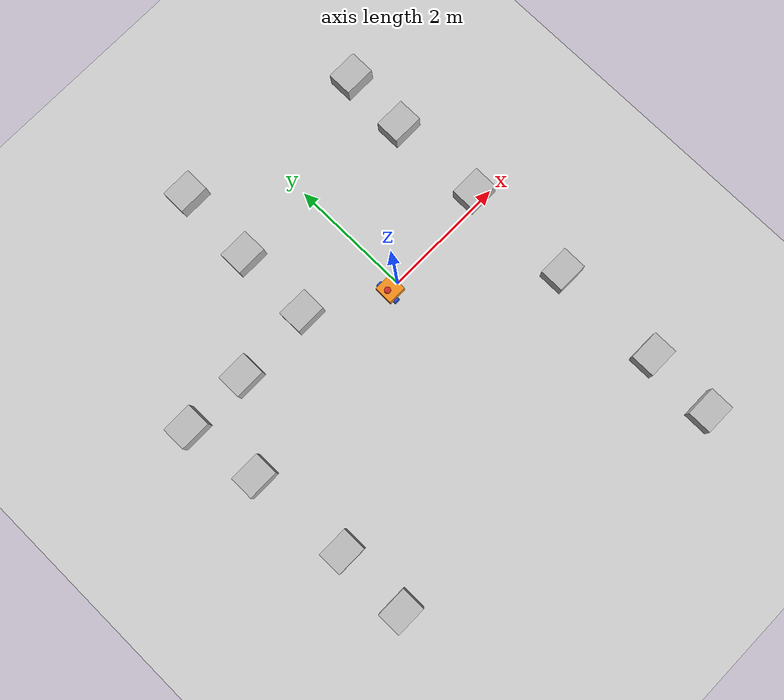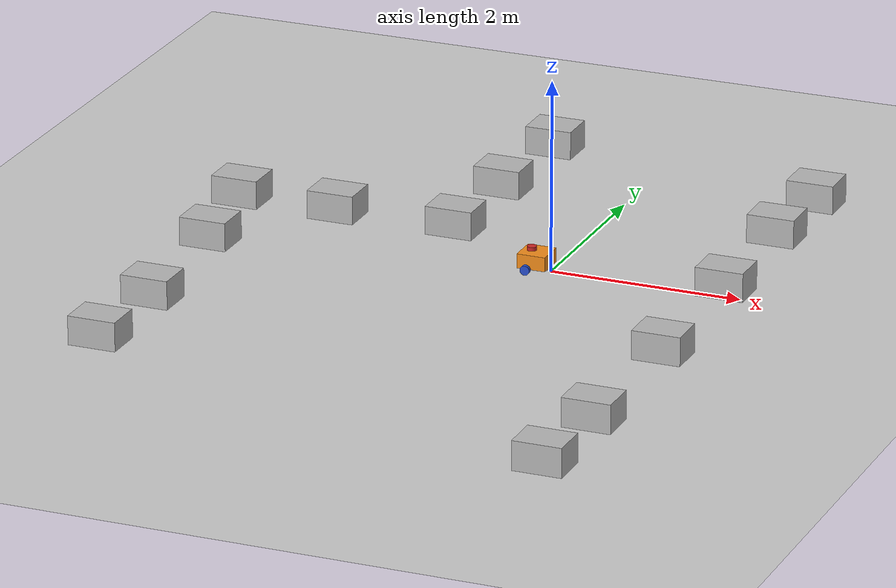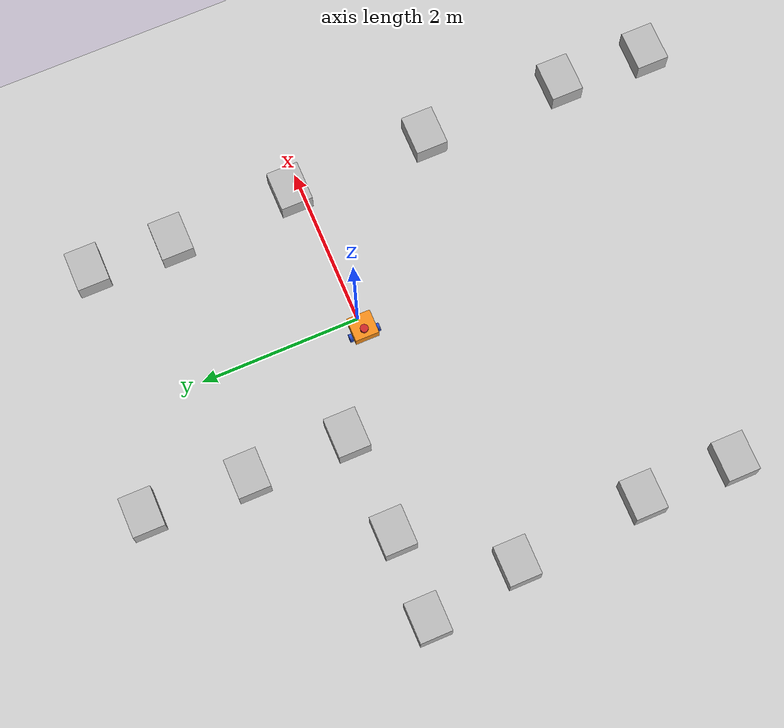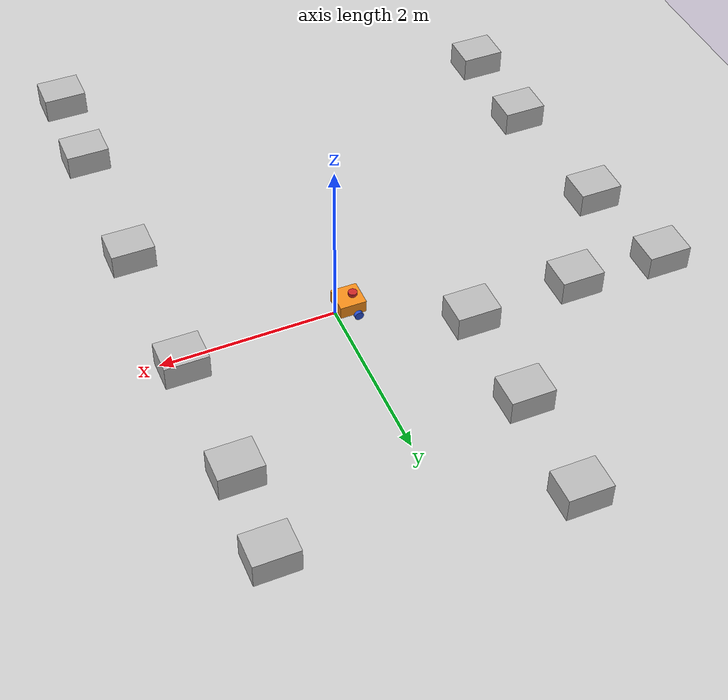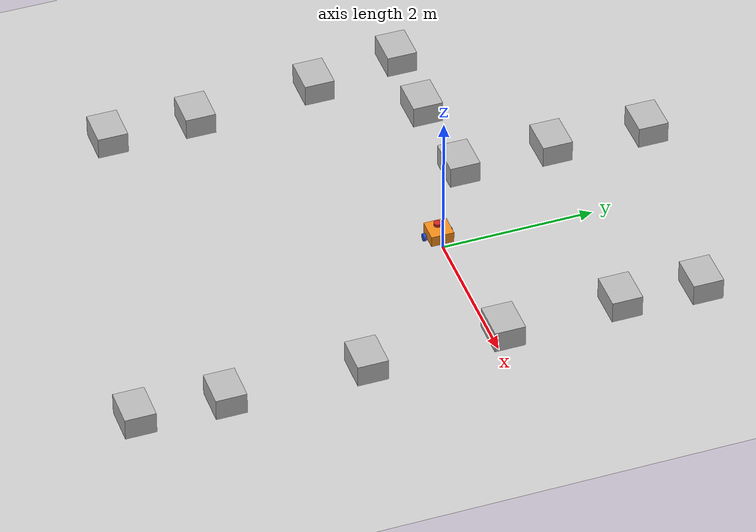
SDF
<sdf version="1.7">
 <world name="default">
  <light name="sun" type="directional">
   <pose>0 0 10 0 -0 0</pose>
   <diffuse>0.8 0.8 0.8 1</diffuse>
   <specular>0.2 0.2 0.2 1</specular>
   <attenuation>
    <range>1000</range>
    <constant>0.9</constant>
    <linear>0.01</linear>
    <quadratic>0.001</quadratic>
   </attenuation>
   <direction>-0.5 0.1 -0.9</direction>
   <spot><inner_angle>0</inner_angle><outer_angle>0</outer_angle><falloff>0</falloff></spot>
  </light>
  <model name="ground_plane">
   <static>1</static>
   <link name="link">
    <collision name="collision">
     <geometry><plane><normal>0 0 1</normal><size>100 100</size></plane></geometry>
     <surface><friction><ode><mu>100</mu><mu2>50</mu2></ode></friction></surface>
    </collision>
    <visual name="visual">
     <cast_shadows>0</cast_shadows>
     <geometry><plane><normal>0 0 1</normal><size>100 100</size></plane></geometry>
     <material>
      <script><uri>file://media/materials/scripts/gazebo.material</uri><name>Gazebo/Grey</name></script>
     </material>
    </visual>
   </link>
  </model>
  <gravity>0 0 -9.8</gravity>
  <magnetic_field>6e-06 2.3e-05 -4.2e-05</magnetic_field>
  <atmosphere type="adiabatic"/>
  <physics type="ode">
   <max_step_size>0.001</max_step_size>
   <real_time_factor>1</real_time_factor>
   <real_time_update_rate>1000</real_time_update_rate>
  </physics>
  <scene><ambient>0.4 0.4 0.4 1</ambient><background>0.7 0.7 0.7 1</background><shadows>1</shadows></scene>
  <spherical_coordinates>
   <surface_model>EARTH_WGS84</surface_model>
   <latitude_deg>0</latitude_deg>
   <longitude_deg>0</longitude_deg>
   <elevation>0</elevation>
   <heading_deg>0</heading_deg>
  </spherical_coordinates>
  <model name="my_bot">
   <link name="base_link">
    <inertial>
     <pose>0.057623 0 0.085246 0 -0 0</pose>
     <mass>0.61</mass>
     <inertia>
      <ixx>0.00480599</ixx>
      <ixy>0</ixy>
      <ixz>0.000667643</ixz>
      <iyy>0.00700467</iyy>
      <iyz>0</iyz>
      <izz>0.00817616</izz>
     </inertia>
    </inertial>
    <collision name="base_link_fixed_joint_lump__chassis_collision">
     <pose>0.05 0 0.075 0 -0 0</pose>
     <geometry><box><size>0.3 0.3 0.15</size></box></geometry>
    </collision>
    <collision name="base_link_fixed_joint_lump__caster_wheel_collision_1">
     <pose>0.14 0 0 0 -0 0</pose>
     <geometry><sphere><radius>0.05</radius></sphere></geometry>
     <surface><friction><ode><mu>0.001</mu><mu2>0.001</mu2></ode></friction></surface>
    </collision>
    <collision name="base_link_fixed_joint_lump__laser_frame_collision_2">
     <pose>0 0 0.175 0 -0 0</pose>
     <geometry><cylinder><length>0.04</length><radius>0.05</radius></cylinder></geometry>
    </collision>
    <visual name="base_link_fixed_joint_lump__chassis_visual">
     <pose>0.05 0 0.075 0 -0 0</pose>
     <geometry><box><size>0.3 0.3 0.15</size></box></geometry>
     <material>
      <script><name>Gazebo/Orange</name><uri>file://media/materials/scripts/gazebo.material</uri></script>
     </material>
    </visual>
    <visual name="base_link_fixed_joint_lump__caster_wheel_visual_1">
     <pose>0.14 0 0 0 -0 0</pose>
     <geometry><sphere><radius>0.05</radius></sphere></geometry>
     <material>
      <script><name>Gazebo/Black</name><uri>file://media/materials/scripts/gazebo.material</uri></script>
     </material>
    </visual>
    <visual name="base_link_fixed_joint_lump__laser_frame_visual_2">
     <pose>0 0 0.175 0 -0 0</pose>
     <geometry><cylinder><length>0.04</length><radius>0.05</radius></cylinder></geometry>
     <material>
      <script><name>Gazebo/Red</name><uri>file://media/materials/scripts/gazebo.material</uri></script>
     </material>
    </visual>
    <sensor name="laser" type="ray">
     <visualize>1</visualize>
     <update_rate>10</update_rate>
     <ray>
      <scan>
       <horizontal>
        <samples>360</samples>
        <min_angle>-3.14</min_angle>
        <max_angle>3.14</max_angle>
        <resolution>1</resolution>
       </horizontal>
       <vertical><samples>1</samples><min_angle>0</min_angle><max_angle>0</max_angle></vertical>
      </scan>
      <range><min>0.3</min><max>12</max></range>
     </ray>
     <plugin name="laser_controller" filename="libgazebo_ros_ray_sensor.so">
      <ros><argument>~/out:=scan</argument></ros>
      <output_type>sensor_msgs/LaserScan</output_type>
      <frame_name>laser_frame</frame_name>
     </plugin>
     <pose>0 0 0.175 0 -0 0</pose>
    </sensor>
   </link>
   <joint name="left_wheel_joint" type="revolute">
    <pose relative_to="base_link">0 0.175 0 -1.5708 0 0</pose>
    <parent>base_link</parent>
    <child>left_wheel</child>
    <axis>
     <xyz>0 0 1</xyz>
     <limit><lower>-1e+16</lower><upper>1e+16</upper></limit>
     <dynamics><spring_reference>0</spring_reference><spring_stiffness>0</spring_stiffness></dynamics>
    </axis>
   </joint>
   <link name="left_wheel">
    <pose relative_to="left_wheel_joint">0 0 0 0 -0 0</pose>
    <inertial>
     <mass>0.05</mass>
     <inertia>
      <ixx>1.64292e-05</ixx>
      <ixy>0</ixy>
      <ixz>0</ixz>
      <iyy>1.64292e-05</iyy>
      <iyz>0</iyz>
      <izz>2.7225e-05</izz>
     </inertia>
    </inertial>
    <collision name="left_wheel_collision">
     <geometry><cylinder><length>0.04</length><radius>0.05</radius></cylinder></geometry>
    </collision>
    <visual name="left_wheel_visual">
     <geometry><cylinder><length>0.04</length><radius>0.05</radius></cylinder></geometry>
     <material>
      <script><name>Gazebo/Blue</name><uri>file://media/materials/scripts/gazebo.material</uri></script>
     </material>
    </visual>
   </link>
   <joint name="right_wheel_joint" type="revolute">
    <pose relative_to="base_link">0 -0.175 0 1.5708 -0 0</pose>
    <parent>base_link</parent>
    <child>right_wheel</child>
    <axis>
     <xyz>0 0 -1</xyz>
     <limit><lower>-1e+16</lower><upper>1e+16</upper></limit>
     <dynamics><spring_reference>0</spring_reference><spring_stiffness>0</spring_stiffness></dynamics>
    </axis>
   </joint>
   <link name="right_wheel">
    <pose relative_to="right_wheel_joint">0 0 0 0 -0 0</pose>
    <inertial>
     <mass>0.05</mass>
     <inertia>
      <ixx>1.64292e-05</ixx>
      <ixy>0</ixy>
      <ixz>0</ixz>
      <iyy>1.64292e-05</iyy>
      <iyz>0</iyz>
      <izz>2.7225e-05</izz>
     </inertia>
    </inertial>
    <collision name="right_wheel_collision">
     <geometry><cylinder><length>0.04</length><radius>0.05</radius></cylinder></geometry>
    </collision>
    <visual name="right_wheel_visual">
     <geometry><cylinder><length>0.04</length><radius>0.05</radius></cylinder></geometry>
     <material>
      <script><name>Gazebo/Blue</name><uri>file://media/materials/scripts/gazebo.material</uri></script>
     </material>
    </visual>
   </link>
   <static>0</static>
   <plugin name="diff_drive" filename="libgazebo_ros_diff_drive.so">
    <left_joint>left_wheel_joint</left_joint>
    <right_joint>right_wheel_joint</right_joint>
    <wheel_separation>0.35</wheel_separation>
    <wheel_diameter>0.1</wheel_diameter>
    <max_wheel_torque>200</max_wheel_torque>
    <max_wheel_acceleration>10.0</max_wheel_acceleration>
    <odometry_frame>odom</odometry_frame>
    <robot_base_frame>base_link</robot_base_frame>
    <publish_odom>1</publish_odom>
    <publish_odom_tf>1</publish_odom_tf>
    <publish_wheel_tf>1</publish_wheel_tf>
   </plugin>
   <pose>-0.205341 -0.003187 0.050001 1e-06 1.9e-05 -0.00431</pose>
  </model>
  <model name="cardboard_box">
   <pose>1.7942 2.75603 0.149 0 -0 0</pose>
   <link name="link">
    <inertial>
     <mass>2</mass>
     <inertia>
      <ixx>0.0416667</ixx>
      <ixy>0</ixy>
      <ixz>0</ixz>
      <iyy>0.0566667</iyy>
      <iyz>0</iyz>
      <izz>0.0683333</izz>
     </inertia>
    </inertial>
    <collision name="collision">
     <geometry><box><size>0.5 0.4 0.3</size></box></geometry>
     <surface>
      <friction><ode><mu>1</mu><mu2>1</mu2></ode></friction>
      <contact><ode><kp>1e+07</kp><kd>1</kd><min_depth>0.001</min_depth><max_vel>0.1</max_vel></ode></contact>
     </surface>
    </collision>
    <visual name="visual">
     <pose>0 0 -0.15 0 -0 0</pose>
     <geometry>
      <mesh><uri>model://cardboard_box/meshes/cardboard_box.dae</uri><scale>1.25932 1.00745 0.755591</scale></mesh>
     </geometry>
    </visual>
   </link>
  </model>
  <model name="cardboard_box_clone">
   <pose>1.75652 1.69547 0.149 0 -0 0</pose>
   <link name="link">
    <inertial>
     <mass>2</mass>
     <inertia>
      <ixx>0.0416667</ixx>
      <ixy>0</ixy>
      <ixz>0</ixz>
      <iyy>0.0566667</iyy>
      <iyz>0</iyz>
      <izz>0.0683333</izz>
     </inertia>
    </inertial>
    <collision name="collision">
     <geometry><box><size>0.5 0.4 0.3</size></box></geometry>
     <surface>
      <friction><ode><mu>1</mu><mu2>1</mu2></ode></friction>
      <contact><ode><kp>1e+07</kp><kd>1</kd><min_depth>0.001</min_depth><max_vel>0.1</max_vel></ode></contact>
     </surface>
    </collision>
    <visual name="visual">
     <pose>0 0 -0.15 0 -0 0</pose>
     <geometry>
      <mesh><uri>model://cardboard_box/meshes/cardboard_box.dae</uri><scale>1.25932 1.00745 0.755591</scale></mesh>
     </geometry>
    </visual>
   </link>
  </model>
  <model name="cardboard_box_clone_0">
   <pose>1.7902 0.140883 0.149 0 -0 0</pose>
   <link name="link">
    <inertial>
     <mass>2</mass>
     <inertia>
      <ixx>0.0416667</ixx>
      <ixy>0</ixy>
      <ixz>0</ixz>
      <iyy>0.0566667</iyy>
      <iyz>0</iyz>
      <izz>0.0683333</izz>
     </inertia>
    </inertial>
    <collision name="collision">
     <geometry><box><size>0.5 0.4 0.3</size></box></geometry>
     <surface>
      <friction><ode><mu>1</mu><mu2>1</mu2></ode></friction>
      <contact><ode><kp>1e+07</kp><kd>1</kd><min_depth>0.001</min_depth><max_vel>0.1</max_vel></ode></contact>
     </surface>
    </collision>
    <visual name="visual">
     <pose>0 0 -0.15 0 -0 0</pose>
     <geometry>
      <mesh><uri>model://cardboard_box/meshes/cardboard_box.dae</uri><scale>1.25932 1.00745 0.755591</scale></mesh>
     </geometry>
    </visual>
   </link>
  </model>
  <model name="cardboard_box_clone_1">
   <pose>1.8133 -1.6466 0.149 0 -0 0</pose>
   <link name="link">
    <inertial>
     <mass>2</mass>
     <inertia>
      <ixx>0.0416667</ixx>
      <ixy>0</ixy>
      <ixz>0</ixz>
      <iyy>0.0566667</iyy>
      <iyz>0</iyz>
      <izz>0.0683333</izz>
     </inertia>
    </inertial>
    <collision name="collision">
     <geometry><box><size>0.5 0.4 0.3</size></box></geometry>
     <surface>
      <friction><ode><mu>1</mu><mu2>1</mu2></ode></friction>
      <contact><ode><kp>1e+07</kp><kd>1</kd><min_depth>0.001</min_depth><max_vel>0.1</max_vel></ode></contact>
     </surface>
    </collision>
    <visual name="visual">
     <pose>0 0 -0.15 0 -0 0</pose>
     <geometry>
      <mesh><uri>model://cardboard_box/meshes/cardboard_box.dae</uri><scale>1.25932 1.00745 0.755591</scale></mesh>
     </geometry>
    </visual>
   </link>
  </model>
  <model name="cardboard_box_clone_2">
   <pose>1.80954 -3.45815 0.149 0 -0 0</pose>
   <link name="link">
    <inertial>
     <mass>2</mass>
     <inertia>
      <ixx>0.0416667</ixx>
      <ixy>0</ixy>
      <ixz>0</ixz>
      <iyy>0.0566667</iyy>
      <iyz>0</iyz>
      <izz>0.0683333</izz>
     </inertia>
    </inertial>
    <collision name="collision">
     <geometry><box><size>0.5 0.4 0.3</size></box></geometry>
     <surface>
      <friction><ode><mu>1</mu><mu2>1</mu2></ode></friction>
      <contact><ode><kp>1e+07</kp><kd>1</kd><min_depth>0.001</min_depth><max_vel>0.1</max_vel></ode></contact>
     </surface>
    </collision>
    <visual name="visual">
     <pose>0 0 -0.15 0 -0 0</pose>
     <geometry>
      <mesh><uri>model://cardboard_box/meshes/cardboard_box.dae</uri><scale>1.25932 1.00745 0.755591</scale></mesh>
     </geometry>
    </visual>
   </link>
  </model>
  <model name="cardboard_box_clone_3">
   <pose>1.77201 -4.59606 0.149 0 -0 0</pose>
   <link name="link">
    <inertial>
     <mass>2</mass>
     <inertia>
      <ixx>0.0416667</ixx>
      <ixy>0</ixy>
      <ixz>0</ixz>
      <iyy>0.0566667</iyy>
      <iyz>0</iyz>
      <izz>0.0683333</izz>
     </inertia>
    </inertial>
    <collision name="collision">
     <geometry><box><size>0.5 0.4 0.3</size></box></geometry>
     <surface>
      <friction><ode><mu>1</mu><mu2>1</mu2></ode></friction>
      <contact><ode><kp>1e+07</kp><kd>1</kd><min_depth>0.001</min_depth><max_vel>0.1</max_vel></ode></contact>
     </surface>
    </collision>
    <visual name="visual">
     <pose>0 0 -0.15 0 -0 0</pose>
     <geometry>
      <mesh><uri>model://cardboard_box/meshes/cardboard_box.dae</uri><scale>1.25932 1.00745 0.755591</scale></mesh>
     </geometry>
    </visual>
   </link>
  </model>
  <model name="cardboard_box_clone_4">
   <pose>-1.24239 3.21631 0.149 0 -0 0</pose>
   <link name="link">
    <inertial>
     <mass>2</mass>
     <inertia>
      <ixx>0.0416667</ixx>
      <ixy>0</ixy>
      <ixz>0</ixz>
      <iyy>0.0566667</iyy>
      <iyz>0</iyz>
      <izz>0.0683333</izz>
     </inertia>
    </inertial>
    <collision name="collision">
     <geometry><box><size>0.5 0.4 0.3</size></box></geometry>
     <surface>
      <friction><ode><mu>1</mu><mu2>1</mu2></ode></friction>
      <contact><ode><kp>1e+07</kp><kd>1</kd><min_depth>0.001</min_depth><max_vel>0.1</max_vel></ode></contact>
     </surface>
    </collision>
    <visual name="visual">
     <pose>0 0 -0.15 0 -0 0</pose>
     <geometry>
      <mesh><uri>model://cardboard_box/meshes/cardboard_box.dae</uri><scale>1.25932 1.00745 0.755591</scale></mesh>
     </geometry>
    </visual>
   </link>
  </model>
  <model name="cardboard_box_clone_5">
   <pose>-1.29692 1.9281 0.149 0 -0 0</pose>
   <link name="link">
    <inertial>
     <mass>2</mass>
     <inertia>
      <ixx>0.0416667</ixx>
      <ixy>0</ixy>
      <ixz>0</ixz>
      <iyy>0.0566667</iyy>
      <iyz>0</iyz>
      <izz>0.0683333</izz>
     </inertia>
    </inertial>
    <collision name="collision">
     <geometry><box><size>0.5 0.4 0.3</size></box></geometry>
     <surface>
      <friction><ode><mu>1</mu><mu2>1</mu2></ode></friction>
      <contact><ode><kp>1e+07</kp><kd>1</kd><min_depth>0.001</min_depth><max_vel>0.1</max_vel></ode></contact>
     </surface>
    </collision>
    <visual name="visual">
     <pose>0 0 -0.15 0 -0 0</pose>
     <geometry>
      <mesh><uri>model://cardboard_box/meshes/cardboard_box.dae</uri><scale>1.25932 1.00745 0.755591</scale></mesh>
     </geometry>
    </visual>
   </link>
  </model>
  <model name="cardboard_box_clone_6">
   <pose>-1.30532 0.676858 0.149 0 -0 0</pose>
   <link name="link">
    <inertial>
     <mass>2</mass>
     <inertia>
      <ixx>0.0416667</ixx>
      <ixy>0</ixy>
      <ixz>0</ixz>
      <iyy>0.0566667</iyy>
      <iyz>0</iyz>
      <izz>0.0683333</izz>
     </inertia>
    </inertial>
    <collision name="collision">
     <geometry><box><size>0.5 0.4 0.3</size></box></geometry>
     <surface>
      <friction><ode><mu>1</mu><mu2>1</mu2></ode></friction>
      <contact><ode><kp>1e+07</kp><kd>1</kd><min_depth>0.001</min_depth><max_vel>0.1</max_vel></ode></contact>
     </surface>
    </collision>
    <visual name="visual">
     <pose>0 0 -0.15 0 -0 0</pose>
     <geometry>
      <mesh><uri>model://cardboard_box/meshes/cardboard_box.dae</uri><scale>1.25932 1.00745 0.755591</scale></mesh>
     </geometry>
    </visual>
   </link>
  </model>
  <model name="cardboard_box_clone_7">
   <pose>-2.58206 0.631711 0.149 0 -0 0</pose>
   <link name="link">
    <inertial>
     <mass>2</mass>
     <inertia>
      <ixx>0.0416667</ixx>
      <ixy>0</ixy>
      <ixz>0</ixz>
      <iyy>0.0566667</iyy>
      <iyz>0</iyz>
      <izz>0.0683333</izz>
     </inertia>
    </inertial>
    <collision name="collision">
     <geometry><box><size>0.5 0.4 0.3</size></box></geometry>
     <surface>
      <friction><ode><mu>1</mu><mu2>1</mu2></ode></friction>
      <contact><ode><kp>1e+07</kp><kd>1</kd><min_depth>0.001</min_depth><max_vel>0.1</max_vel></ode></contact>
     </surface>
    </collision>
    <visual name="visual">
     <pose>0 0 -0.15 0 -0 0</pose>
     <geometry>
      <mesh><uri>model://cardboard_box/meshes/cardboard_box.dae</uri><scale>1.25932 1.00745 0.755591</scale></mesh>
     </geometry>
    </visual>
   </link>
  </model>
  <model name="cardboard_box_clone_8">
   <pose>-3.65326 0.657723 0.149 0 -0 0</pose>
   <link name="link">
    <inertial>
     <mass>2</mass>
     <inertia>
      <ixx>0.0416667</ixx>
      <ixy>0</ixy>
      <ixz>0</ixz>
      <iyy>0.0566667</iyy>
      <iyz>0</iyz>
      <izz>0.0683333</izz>
     </inertia>
    </inertial>
    <collision name="collision">
     <geometry><box><size>0.5 0.4 0.3</size></box></geometry>
     <surface>
      <friction><ode><mu>1</mu><mu2>1</mu2></ode></friction>
      <contact><ode><kp>1e+07</kp><kd>1</kd><min_depth>0.001</min_depth><max_vel>0.1</max_vel></ode></contact>
     </surface>
    </collision>
    <visual name="visual">
     <pose>0 0 -0.15 0 -0 0</pose>
     <geometry>
      <mesh><uri>model://cardboard_box/meshes/cardboard_box.dae</uri><scale>1.25932 1.00745 0.755591</scale></mesh>
     </geometry>
    </visual>
   </link>
  </model>
  <model name="cardboard_box_clone_9">
   <pose>-3.45981 -0.541362 0.149 0 -0 0</pose>
   <link name="link">
    <inertial>
     <mass>2</mass>
     <inertia>
      <ixx>0.0416667</ixx>
      <ixy>0</ixy>
      <ixz>0</ixz>
      <iyy>0.0566667</iyy>
      <iyz>0</iyz>
      <izz>0.0683333</izz>
     </inertia>
    </inertial>
    <collision name="collision">
     <geometry><box><size>0.5 0.4 0.3</size></box></geometry>
     <surface>
      <friction><ode><mu>1</mu><mu2>1</mu2></ode></friction>
      <contact><ode><kp>1e+07</kp><kd>1</kd><min_depth>0.001</min_depth><max_vel>0.1</max_vel></ode></contact>
     </surface>
    </collision>
    <visual name="visual">
     <pose>0 0 -0.15 0 -0 0</pose>
     <geometry>
      <mesh><uri>model://cardboard_box/meshes/cardboard_box.dae</uri><scale>1.25932 1.00745 0.755591</scale></mesh>
     </geometry>
    </visual>
   </link>
  </model>
  <model name="cardboard_box_clone_10">
   <pose>-3.3312 -2.19296 0.149 0 -0 0</pose>
   <link name="link">
    <inertial>
     <mass>2</mass>
     <inertia>
      <ixx>0.0416667</ixx>
      <ixy>0</ixy>
      <ixz>0</ixz>
      <iyy>0.0566667</iyy>
      <iyz>0</iyz>
      <izz>0.0683333</izz>
     </inertia>
    </inertial>
    <collision name="collision">
     <geometry><box><size>0.5 0.4 0.3</size></box></geometry>
     <surface>
      <friction><ode><mu>1</mu><mu2>1</mu2></ode></friction>
      <contact><ode><kp>1e+07</kp><kd>1</kd><min_depth>0.001</min_depth><max_vel>0.1</max_vel></ode></contact>
     </surface>
    </collision>
    <visual name="visual">
     <pose>0 0 -0.15 0 -0 0</pose>
     <geometry>
      <mesh><uri>model://cardboard_box/meshes/cardboard_box.dae</uri><scale>1.25932 1.00745 0.755591</scale></mesh>
     </geometry>
    </visual>
   </link>
  </model>
  <model name="cardboard_box_clone_11">
   <pose>-3.33878 -3.36785 0.149027 2e-06 -2e-06 -0</pose>
   <link name="link">
    <inertial>
     <mass>2</mass>
     <inertia>
      <ixx>0.0416667</ixx>
      <ixy>0</ixy>
      <ixz>0</ixz>
      <iyy>0.0566667</iyy>
      <iyz>0</iyz>
      <izz>0.0683333</izz>
     </inertia>
    </inertial>
    <collision name="collision">
     <geometry><box><size>0.5 0.4 0.3</size></box></geometry>
     <surface>
      <friction><ode><mu>1</mu><mu2>1</mu2></ode></friction>
      <contact><ode><kp>1e+07</kp><kd>1</kd><min_depth>0.001</min_depth><max_vel>0.1</max_vel></ode></contact>
     </surface>
    </collision>
    <visual name="visual">
     <pose>0 0 -0.15 0 -0 0</pose>
     <geometry>
      <mesh><uri>model://cardboard_box/meshes/cardboard_box.dae</uri><scale>1.25932 1.00745 0.755591</scale></mesh>
     </geometry>
    </visual>
   </link>
  </model>
 </world>
</sdf>
